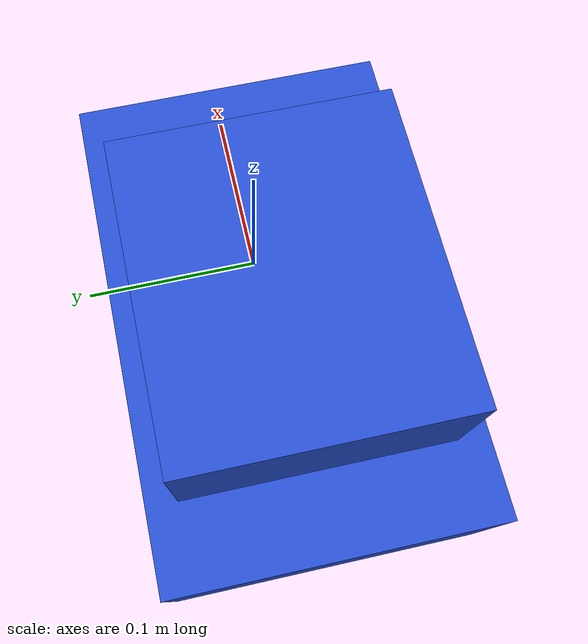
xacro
<?xml version="1.0"?>

<robot xmlns:xacro="http://www.ros.org/wiki/xacro">
 <link name= "base_link">

 </link>

 <joint name="chassis_joint" type="fixed">
   <parent link="base_link"/>
   <child link="chassis"/>
   <origin xyz="0.07 0 0"/>
  </joint>

  <link name="chassis">
   <visual>
    <origin xyz="-0.125 0 0.04"/>
     <geometry>
       <box size="0.250 0.16 0.08"/>
     </geometry>
     <material name="blue"/>
   </visual>

   <collision>
     <origin xyz="-0.125 0 0.04"/>
     <geometry>
       <box size="0.250 0.16 0.08"/>
     </geometry>
   </collision>

  </link>

  <gazebo reference="chassis">
    <material>Gazebo/Blue</material>
  </gazebo>

             <!--Up Chassis-->
 <joint name="up_chassis_joint" type="fixed">
   <parent link="chassis"/>
   <child link="up_chassis"/>
   <origin xyz=" -0.135 0 0.11"/>
  </joint>

  <link name="up_chassis">
   <visual>
     <geometry>
       <box size="0.15 0.13 0.06"/>
     </geometry>
     <material name="blue"/>
   </visual>

   <collision>
     <geometry>
       <box size="0.15 0.13 0.06"/>
     </geometry>
   </collision>

  </link>

  <gazebo reference="up_chassis">
    <material>Gazebo/Blue</material>
  </gazebo>

   <!--Base_footprint Link-->
  <joint name="base_footprint_joint" type="fixed">
   <parent link="base_link"/>
   <child link="base_footprint"/>
   <origin xyz=" 0 0 0"/>
  </joint>

  <link name="base_footprint"></link>

 </robot>
